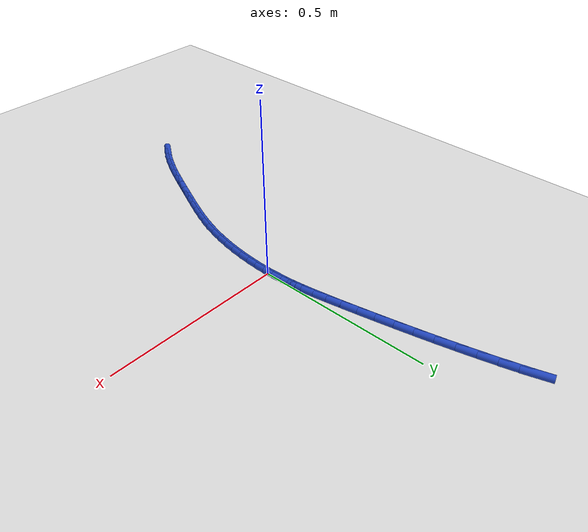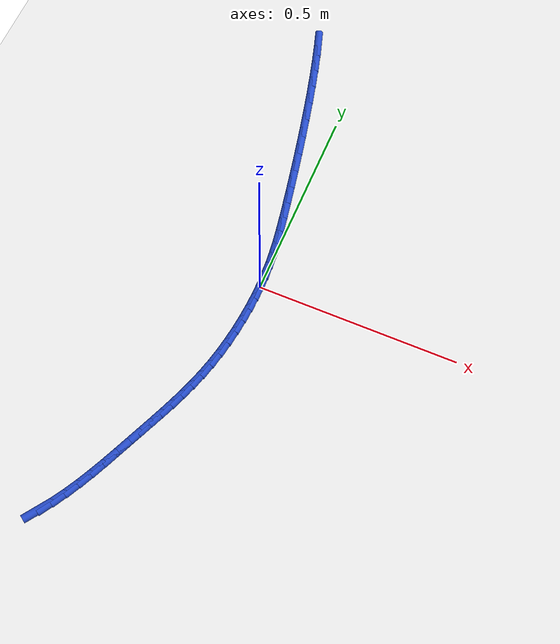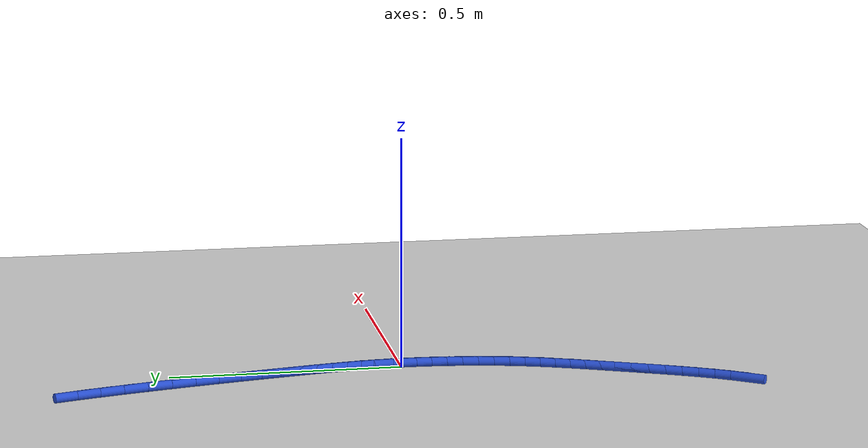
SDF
<sdf version="1.6">
 <world name="default">
  <model name="ground_plane">
   <static>1</static>
   <link name="link">
    <collision name="collision">
     <geometry><plane><normal>0 0 1</normal><size>100 100</size></plane></geometry>
     <surface><friction><ode><mu>100</mu><mu2>50</mu2></ode></friction></surface>
    </collision>
    <visual name="visual">
     <cast_shadows>0</cast_shadows>
     <geometry><plane><normal>0 0 1</normal><size>100 100</size></plane></geometry>
     <material>
      <script><uri>file://media/materials/scripts/gazebo.material</uri><name>Gazebo/WhiteGlow</name></script>
     </material>
    </visual>
   </link>
  </model>
  <model name="line">
   <link name="link_0">
    <pose>2.6020852139652106e-18 3.469446951953614e-17 0.01 0 1.57 -1.5464476256501802</pose>
    <collision name="collision">
     <geometry><cylinder><radius>0.01</radius><length>0.08</length></cylinder></geometry>
    </collision>
    <visual name="visual">
     <material>
      <script><name>Gazebo/Blue</name><uri>file://media/materials/scripts/gazebo.material</uri></script>
     </material>
     <geometry><cylinder><radius>0.01</radius><length>0.08</length></cylinder></geometry>
    </visual>
   </link>
   <link name="link_1">
    <pose>-0.0007487655124719422 0.030745686651664664 0.01 0 1.57 -1.5104224034965954</pose>
    <collision name="collision">
     <geometry><cylinder><radius>0.01</radius><length>0.08</length></cylinder></geometry>
    </collision>
    <visual name="visual">
     <material>
      <script><name>Gazebo/Blue</name><uri>file://media/materials/scripts/gazebo.material</uri></script>
     </material>
     <geometry><cylinder><radius>0.01</radius><length>0.08</length></cylinder></geometry>
    </visual>
   </link>
   <link name="link_2">
    <pose>-0.002577657408801142 0.06100161746167763 0.01 0 1.57 -1.4762705760131296</pose>
    <collision name="collision">
     <geometry><cylinder><radius>0.01</radius><length>0.08</length></cylinder></geometry>
    </collision>
    <visual name="visual">
     <material>
      <script><name>Gazebo/Blue</name><uri>file://media/materials/scripts/gazebo.material</uri></script>
     </material>
     <geometry><cylinder><radius>0.01</radius><length>0.08</length></cylinder></geometry>
    </visual>
   </link>
   <link name="link_3">
    <pose>-0.00546558153639707 0.09146228730003628 0.01 0 1.57 -1.4462569014247348</pose>
    <collision name="collision">
     <geometry><cylinder><radius>0.01</radius><length>0.08</length></cylinder></geometry>
    </collision>
    <visual name="visual">
     <material>
      <script><name>Gazebo/Blue</name><uri>file://media/materials/scripts/gazebo.material</uri></script>
     </material>
     <geometry><cylinder><radius>0.01</radius><length>0.08</length></cylinder></geometry>
    </visual>
   </link>
   <link name="link_4">
    <pose>-0.009391443742669208 0.122822191036738 0.01 0 1.57 -1.4219164323984042</pose>
    <collision name="collision">
     <geometry><cylinder><radius>0.01</radius><length>0.08</length></cylinder></geometry>
    </collision>
    <visual name="visual">
     <material>
      <script><name>Gazebo/Blue</name><uri>file://media/materials/scripts/gazebo.material</uri></script>
     </material>
     <geometry><cylinder><radius>0.01</radius><length>0.08</length></cylinder></geometry>
    </visual>
   </link>
   <link name="link_5">
    <pose>-0.014334149875027031 0.15577582354178016 0.01 0 1.57 -1.4038587924622183</pose>
    <collision name="collision">
     <geometry><cylinder><radius>0.01</radius><length>0.08</length></cylinder></geometry>
    </collision>
    <visual name="visual">
     <material>
      <script><name>Gazebo/Blue</name><uri>file://media/materials/scripts/gazebo.material</uri></script>
     </material>
     <geometry><cylinder><radius>0.01</radius><length>0.08</length></cylinder></geometry>
    </visual>
   </link>
   <link name="link_6">
    <pose>-0.02027260578088002 0.19101767968516015 0.01 0 1.57 -1.3918751908380276</pose>
    <collision name="collision">
     <geometry><cylinder><radius>0.01</radius><length>0.08</length></cylinder></geometry>
    </collision>
    <visual name="visual">
     <material>
      <script><name>Gazebo/Blue</name><uri>file://media/materials/scripts/gazebo.material</uri></script>
     </material>
     <geometry><cylinder><radius>0.01</radius><length>0.08</length></cylinder></geometry>
    </visual>
   </link>
   <link name="link_7">
    <pose>-0.027185717307637653 0.22924225433687534 0.01 0 1.57 -1.3848775411903387</pose>
    <collision name="collision">
     <geometry><cylinder><radius>0.01</radius><length>0.08</length></cylinder></geometry>
    </collision>
    <visual name="visual">
     <material>
      <script><name>Gazebo/Blue</name><uri>file://media/materials/scripts/gazebo.material</uri></script>
     </material>
     <geometry><cylinder><radius>0.01</radius><length>0.08</length></cylinder></geometry>
    </visual>
   </link>
   <link name="link_8">
    <pose>-0.03504850345896277 0.27104535770483995 0.01 0 1.57 -1.3791695386713263</pose>
    <collision name="collision">
     <geometry><cylinder><radius>0.01</radius><length>0.08</length></cylinder></geometry>
    </collision>
    <visual name="visual">
     <material>
      <script><name>Gazebo/Blue</name><uri>file://media/materials/scripts/gazebo.material</uri></script>
     </material>
     <geometry><cylinder><radius>0.01</radius><length>0.08</length></cylinder></geometry>
    </visual>
   </link>
   <link name="link_9">
    <pose>-0.04380223645224188 0.31616598906831483 0.01 0 1.57 -1.3729730955867878</pose>
    <collision name="collision">
     <geometry><cylinder><radius>0.01</radius><length>0.08</length></cylinder></geometry>
    </collision>
    <visual name="visual">
     <material>
      <script><name>Gazebo/Blue</name><uri>file://media/materials/scripts/gazebo.material</uri></script>
     </material>
     <geometry><cylinder><radius>0.01</radius><length>0.08</length></cylinder></geometry>
    </visual>
   </link>
   <link name="link_10">
    <pose>-0.05337084768289666 0.36390287450100156 0.01 0 1.57 -1.3660980536907603</pose>
    <collision name="collision">
     <geometry><cylinder><radius>0.01</radius><length>0.08</length></cylinder></geometry>
    </collision>
    <visual name="visual">
     <material>
      <script><name>Gazebo/Blue</name><uri>file://media/materials/scripts/gazebo.material</uri></script>
     </material>
     <geometry><cylinder><radius>0.01</radius><length>0.08</length></cylinder></geometry>
    </visual>
   </link>
   <link name="link_11">
    <pose>-0.06367812628039955 0.413551128028356 0.01 0 1.57 -1.3583442648418198</pose>
    <collision name="collision">
     <geometry><cylinder><radius>0.01</radius><length>0.08</length></cylinder></geometry>
    </collision>
    <visual name="visual">
     <material>
      <script><name>Gazebo/Blue</name><uri>file://media/materials/scripts/gazebo.material</uri></script>
     </material>
     <geometry><cylinder><radius>0.01</radius><length>0.08</length></cylinder></geometry>
    </visual>
   </link>
   <link name="link_12">
    <pose>-0.07464786137422287 0.4644058636758341 0.01 0 1.57 -1.3494669452412287</pose>
    <collision name="collision">
     <geometry><cylinder><radius>0.01</radius><length>0.08</length></cylinder></geometry>
    </collision>
    <visual name="visual">
     <material>
      <script><name>Gazebo/Blue</name><uri>file://media/materials/scripts/gazebo.material</uri></script>
     </material>
     <geometry><cylinder><radius>0.01</radius><length>0.08</length></cylinder></geometry>
    </visual>
   </link>
   <link name="link_13">
    <pose>-0.08620384209383913 0.5157621954688922 0.01 0 1.57 -1.3391499191216563</pose>
    <collision name="collision">
     <geometry><cylinder><radius>0.01</radius><length>0.08</length></cylinder></geometry>
    </collision>
    <visual name="visual">
     <material>
      <script><name>Gazebo/Blue</name><uri>file://media/materials/scripts/gazebo.material</uri></script>
     </material>
     <geometry><cylinder><radius>0.01</radius><length>0.08</length></cylinder></geometry>
    </visual>
   </link>
   <link name="link_14">
    <pose>-0.09826985756872064 0.5669152374329861 0.01 0 1.57 -1.3269676983986676</pose>
    <collision name="collision">
     <geometry><cylinder><radius>0.01</radius><length>0.08</length></cylinder></geometry>
    </collision>
    <visual name="visual">
     <material>
      <script><name>Gazebo/Blue</name><uri>file://media/materials/scripts/gazebo.material</uri></script>
     </material>
     <geometry><cylinder><radius>0.01</radius><length>0.08</length></cylinder></geometry>
    </visual>
   </link>
   <link name="link_15">
    <pose>-0.1107696969283398 0.6171601035935718 0.01 0 1.57 -1.312326621351807</pose>
    <collision name="collision">
     <geometry><cylinder><radius>0.01</radius><length>0.08</length></cylinder></geometry>
    </collision>
    <visual name="visual">
     <material>
      <script><name>Gazebo/Blue</name><uri>file://media/materials/scripts/gazebo.material</uri></script>
     </material>
     <geometry><cylinder><radius>0.01</radius><length>0.08</length></cylinder></geometry>
    </visual>
   </link>
   <link name="link_16">
    <pose>-0.12362714930216906 0.6657919079761055 0.01 0 1.57 -1.294367646955937</pose>
    <collision name="collision">
     <geometry><cylinder><radius>0.01</radius><length>0.08</length></cylinder></geometry>
    </collision>
    <visual name="visual">
     <material>
      <script><name>Gazebo/Blue</name><uri>file://media/materials/scripts/gazebo.material</uri></script>
     </material>
     <geometry><cylinder><radius>0.01</radius><length>0.08</length></cylinder></geometry>
    </visual>
   </link>
   <link name="link_17">
    <pose>-0.13676600381968082 0.7121057646060435 0.01 0 1.57 -1.2717967072354575</pose>
    <collision name="collision">
     <geometry><cylinder><radius>0.01</radius><length>0.08</length></cylinder></geometry>
    </collision>
    <visual name="visual">
     <material>
      <script><name>Gazebo/Blue</name><uri>file://media/materials/scripts/gazebo.material</uri></script>
     </material>
     <geometry><cylinder><radius>0.01</radius><length>0.08</length></cylinder></geometry>
    </visual>
   </link>
   <link name="link_238">
    <pose>-0.23620712439777597 -0.6990200358022495 0.01 0 1.57 0.9635665447182528</pose>
    <collision name="collision">
     <geometry><cylinder><radius>0.01</radius><length>0.08</length></cylinder></geometry>
    </collision>
    <visual name="visual">
     <material>
      <script><name>Gazebo/Blue</name><uri>file://media/materials/scripts/gazebo.material</uri></script>
     </material>
     <geometry><cylinder><radius>0.01</radius><length>0.08</length></cylinder></geometry>
    </visual>
   </link>
   <link name="link_239">
    <pose>-0.21676487560040303 -0.6710376609072841 0.01 0 1.57 1.022076337191295</pose>
    <collision name="collision">
     <geometry><cylinder><radius>0.01</radius><length>0.08</length></cylinder></geometry>
    </collision>
    <visual name="visual">
     <material>
      <script><name>Gazebo/Blue</name><uri>file://media/materials/scripts/gazebo.material</uri></script>
     </material>
     <geometry><cylinder><radius>0.01</radius><length>0.08</length></cylinder></geometry>
    </visual>
   </link>
   <link name="link_240">
    <pose>-0.19862033371005686 -0.6413579724511221 0.01 0 1.57 1.0688087403425168</pose>
    <collision name="collision">
     <geometry><cylinder><radius>0.01</radius><length>0.08</length></cylinder></geometry>
    </collision>
    <visual name="visual">
     <material>
      <script><name>Gazebo/Blue</name><uri>file://media/materials/scripts/gazebo.material</uri></script>
     </material>
     <geometry><cylinder><radius>0.01</radius><length>0.08</length></cylinder></geometry>
    </visual>
   </link>
   <link name="link_241">
    <pose>-0.18160661889748395 -0.6103611670159625 0.01 0 1.57 1.1050739576881505</pose>
    <collision name="collision">
     <geometry><cylinder><radius>0.01</radius><length>0.08</length></cylinder></geometry>
    </collision>
    <visual name="visual">
     <material>
      <script><name>Gazebo/Blue</name><uri>file://media/materials/scripts/gazebo.material</uri></script>
     </material>
     <geometry><cylinder><radius>0.01</radius><length>0.08</length></cylinder></geometry>
    </visual>
   </link>
   <link name="link_242">
    <pose>-0.1655568513334308 -0.578427441184004 0.01 0 1.57 1.1318845453796407</pose>
    <collision name="collision">
     <geometry><cylinder><radius>0.01</radius><length>0.08</length></cylinder></geometry>
    </collision>
    <visual name="visual">
     <material>
      <script><name>Gazebo/Blue</name><uri>file://media/materials/scripts/gazebo.material</uri></script>
     </material>
     <geometry><cylinder><radius>0.01</radius><length>0.08</length></cylinder></geometry>
    </visual>
   </link>
   <link name="link_243">
    <pose>-0.15030415118864374 -0.5459369915374455 0.01 0 1.57 1.1499203028416969</pose>
    <collision name="collision">
     <geometry><cylinder><radius>0.01</radius><length>0.08</length></cylinder></geometry>
    </collision>
    <visual name="visual">
     <material>
      <script><name>Gazebo/Blue</name><uri>file://media/materials/scripts/gazebo.material</uri></script>
     </material>
     <geometry><cylinder><radius>0.01</radius><length>0.08</length></cylinder></geometry>
    </visual>
   </link>
   <link name="link_244">
    <pose>-0.13568163863386948 -0.5132700146584859 0.01 0 1.57 1.1595109376333717</pose>
    <collision name="collision">
     <geometry><cylinder><radius>0.01</radius><length>0.08</length></cylinder></geometry>
    </collision>
    <visual name="visual">
     <material>
      <script><name>Gazebo/Blue</name><uri>file://media/materials/scripts/gazebo.material</uri></script>
     </material>
     <geometry><cylinder><radius>0.01</radius><length>0.08</length></cylinder></geometry>
    </visual>
   </link>
   <link name="link_245">
    <pose>-0.12152243383985387 -0.4808067071293226 0.01 0 1.57 1.1609277866641319</pose>
    <collision name="collision">
     <geometry><cylinder><radius>0.01</radius><length>0.08</length></cylinder></geometry>
    </collision>
    <visual name="visual">
     <material>
      <script><name>Gazebo/Blue</name><uri>file://media/materials/scripts/gazebo.material</uri></script>
     </material>
     <geometry><cylinder><radius>0.01</radius><length>0.08</length></cylinder></geometry>
    </visual>
   </link>
   <link name="link_246">
    <pose>-0.10766614910424563 -0.4489146827860415 0.01 0 1.57 1.1612395454937947</pose>
    <collision name="collision">
     <geometry><cylinder><radius>0.01</radius><length>0.08</length></cylinder></geometry>
    </collision>
    <visual name="visual">
     <material>
      <script><name>Gazebo/Blue</name><uri>file://media/materials/scripts/gazebo.material</uri></script>
     </material>
     <geometry><cylinder><radius>0.01</radius><length>0.08</length></cylinder></geometry>
    </visual>
   </link>
   <link name="link_247">
    <pose>-0.09410275548059166 -0.4176701369387921 0.01 0 1.57 1.1679944274608842</pose>
    <collision name="collision">
     <geometry><cylinder><radius>0.01</radius><length>0.08</length></cylinder></geometry>
    </collision>
    <visual name="visual">
     <material>
      <script><name>Gazebo/Blue</name><uri>file://media/materials/scripts/gazebo.material</uri></script>
     </material>
     <geometry><cylinder><radius>0.01</radius><length>0.08</length></cylinder></geometry>
    </visual>
   </link>
   <link name="link_248">
    <pose>-0.0809731627445837 -0.3868567223075047 0.01 0 1.57 1.1817666569085659</pose>
    <collision name="collision">
     <geometry><cylinder><radius>0.01</radius><length>0.08</length></cylinder></geometry>
    </collision>
    <visual name="visual">
     <material>
      <script><name>Gazebo/Blue</name><uri>file://media/materials/scripts/gazebo.material</uri></script>
     </material>
     <geometry><cylinder><radius>0.01</radius><length>0.08</length></cylinder></geometry>
    </visual>
   </link>
   <link name="link_249">
    <pose>-0.06842488879260242 -0.3562452840520905 0.01 0 1.57 1.202617679732783</pose>
    <collision name="collision">
     <geometry><cylinder><radius>0.01</radius><length>0.08</length></cylinder></geometry>
    </collision>
    <visual name="visual">
     <material>
      <script><name>Gazebo/Blue</name><uri>file://media/materials/scripts/gazebo.material</uri></script>
     </material>
     <geometry><cylinder><radius>0.01</radius><length>0.08</length></cylinder></geometry>
    </visual>
   </link>
   <link name="link_250">
    <pose>-0.05660545152102857 -0.32560666733246174 0.01 0 1.57 1.2303821417389145</pose>
    <collision name="collision">
     <geometry><cylinder><radius>0.01</radius><length>0.08</length></cylinder></geometry>
    </collision>
    <visual name="visual">
     <material>
      <script><name>Gazebo/Blue</name><uri>file://media/materials/scripts/gazebo.material</uri></script>
     </material>
     <geometry><cylinder><radius>0.01</radius><length>0.08</length></cylinder></geometry>
    </visual>
   </link>
   <link name="link_251">
    <pose>-0.04566236882624293 -0.29471171730852996 0.01 0 1.57 1.2646393509604703</pose>
    <collision name="collision">
     <geometry><cylinder><radius>0.01</radius><length>0.08</length></cylinder></geometry>
    </collision>
    <visual name="visual">
     <material>
      <script><name>Gazebo/Blue</name><uri>file://media/materials/scripts/gazebo.material</uri></script>
     </material>
     <geometry><cylinder><radius>0.01</radius><length>0.08</length></cylinder></geometry>
    </visual>
   </link>
   <link name="link_252">
    <pose>-0.03574315860462597 -0.2633312791402062 0.01 0 1.57 1.3046770079593366</pose>
    <collision name="collision">
     <geometry><cylinder><radius>0.01</radius><length>0.08</length></cylinder></geometry>
    </collision>
    <visual name="visual">
     <material>
      <script><name>Gazebo/Blue</name><uri>file://media/materials/scripts/gazebo.material</uri></script>
     </material>
     <geometry><cylinder><radius>0.01</radius><length>0.08</length></cylinder></geometry>
    </visual>
   </link>
   <link name="link_253">
    <pose>-0.02699489356546831 -0.23123752685238982 0.01 0 1.57 1.3469323348278497</pose>
    <collision name="collision">
     <geometry><cylinder><radius>0.01</radius><length>0.08</length></cylinder></geometry>
    </collision>
    <visual name="visual">
     <material>
      <script><name>Gazebo/Blue</name><uri>file://media/materials/scripts/gazebo.material</uri></script>
     </material>
     <geometry><cylinder><radius>0.01</radius><length>0.08</length></cylinder></geometry>
    </visual>
   </link>
   <link name="link_254">
    <pose>-0.019510382484090108 -0.19836461006037873 0.01 0 1.57 1.3863004608472755</pose>
    <collision name="collision">
     <geometry><cylinder><radius>0.01</radius><length>0.08</length></cylinder></geometry>
    </collision>
    <visual name="visual">
     <material>
      <script><name>Gazebo/Blue</name><uri>file://media/materials/scripts/gazebo.material</uri></script>
     </material>
     <geometry><cylinder><radius>0.01</radius><length>0.08</length></cylinder></geometry>
    </visual>
   </link>
   <link name="link_255">
    <pose>-0.013276831680177882 -0.16496189732597663 0.01 0 1.57 1.4230540623807733</pose>
    <collision name="collision">
     <geometry><cylinder><radius>0.01</radius><length>0.08</length></cylinder></geometry>
    </collision>
    <visual name="visual">
     <material>
      <script><name>Gazebo/Blue</name><uri>file://media/materials/scripts/gazebo.material</uri></script>
     </material>
     <geometry><cylinder><radius>0.01</radius><length>0.08</length></cylinder></geometry>
    </visual>
   </link>
   <link name="link_256">
    <pose>-0.008269284530228576 -0.13131506309152338 0.01 0 1.57 1.458006174377861</pose>
    <collision name="collision">
     <geometry><cylinder><radius>0.01</radius><length>0.08</length></cylinder></geometry>
    </collision>
    <visual name="visual">
     <material>
      <script><name>Gazebo/Blue</name><uri>file://media/materials/scripts/gazebo.material</uri></script>
     </material>
     <geometry><cylinder><radius>0.01</radius><length>0.08</length></cylinder></geometry>
    </visual>
   </link>
   <link name="link_257">
    <pose>-0.004462784410739173 -0.09770978179935912 0.01 0 1.57 1.4919169540733535</pose>
    <collision name="collision">
     <geometry><cylinder><radius>0.01</radius><length>0.08</length></cylinder></geometry>
    </collision>
    <visual name="visual">
     <material>
      <script><name>Gazebo/Blue</name><uri>file://media/materials/scripts/gazebo.material</uri></script>
     </material>
     <geometry><cylinder><radius>0.01</radius><length>0.08</length></cylinder></geometry>
    </visual>
   </link>
   <link name="link_258">
    <pose>-0.0018323746982066293 -0.06443172789182378 0.01 0 1.57 1.5255411900166294</pose>
    <collision name="collision">
     <geometry><cylinder><radius>0.01</radius><length>0.08</length></cylinder></geometry>
    </collision>
    <visual name="visual">
     <material>
      <script><name>Gazebo/Blue</name><uri>file://media/materials/scripts/gazebo.material</uri></script>
     </material>
     <geometry><cylinder><radius>0.01</radius><length>0.08</length></cylinder></geometry>
    </visual>
   </link>
   <link name="link_259">
    <pose>-0.0003530987691279185 -0.031766575811257435 0.01 0 1.57 1.5596813665227203</pose>
    <collision name="collision">
     <geometry><cylinder><radius>0.01</radius><length>0.08</length></cylinder></geometry>
    </collision>
    <visual name="visual">
     <material>
      <script><name>Gazebo/Blue</name><uri>file://media/materials/scripts/gazebo.material</uri></script>
     </material>
     <geometry><cylinder><radius>0.01</radius><length>0.08</length></cylinder></geometry>
    </visual>
   </link>
   <link name="link_260">
    <pose>-6.938893903907228e-18 -1.0408340855860843e-16 0.01 0 1.57 -1.5463386510307269</pose>
    <collision name="collision">
     <geometry><cylinder><radius>0.01</radius><length>0.08</length></cylinder></geometry>
    </collision>
    <visual name="visual">
     <material>
      <script><name>Gazebo/Blue</name><uri>file://media/materials/scripts/gazebo.material</uri></script>
     </material>
     <geometry><cylinder><radius>0.01</radius><length>0.08</length></cylinder></geometry>
    </visual>
   </link>
   <link name="link_261">
    <pose>-0.0007481217673198579 0.030582325099608176 0.01 0 1.57 -1.508211205531774</pose>
    <collision name="collision">
     <geometry><cylinder><radius>0.01</radius><length>0.08</length></cylinder></geometry>
    </collision>
    <visual name="visual">
     <material>
      <script><name>Gazebo/Blue</name><uri>file://media/materials/scripts/gazebo.material</uri></script>
     </material>
     <geometry><cylinder><radius>0.01</radius><length>0.08</length></cylinder></geometry>
    </visual>
   </link>
   <link name="link_262">
    <pose>-0.0025725074475844434 0.05969472504522742 0.01 0 1.57 -1.5277285896102866</pose>
    <collision name="collision">
     <geometry><cylinder><radius>0.01</radius><length>0.08</length></cylinder></geometry>
    </collision>
    <visual name="visual">
     <material>
      <script><name>Gazebo/Blue</name><uri>file://media/materials/scripts/gazebo.material</uri></script>
     </material>
     <geometry><cylinder><radius>0.01</radius><length>0.08</length></cylinder></geometry>
    </visual>
   </link>
  </model>
 </world>
</sdf>
